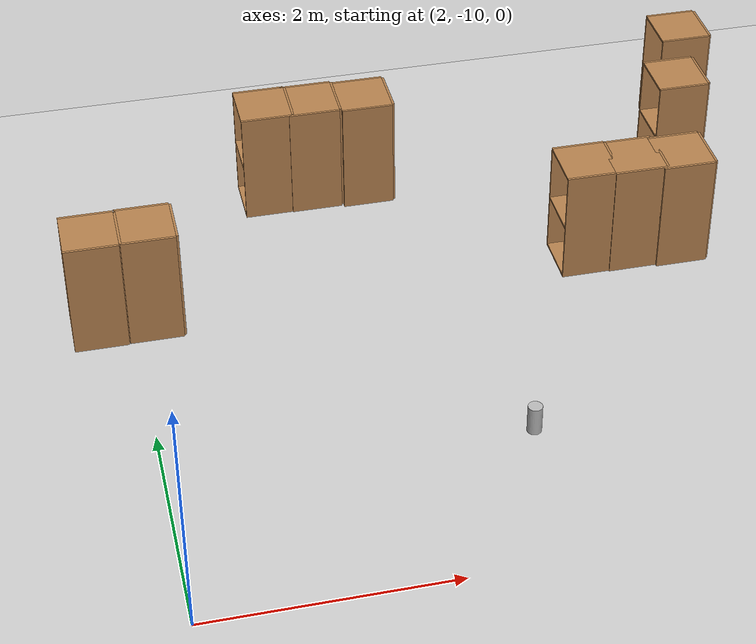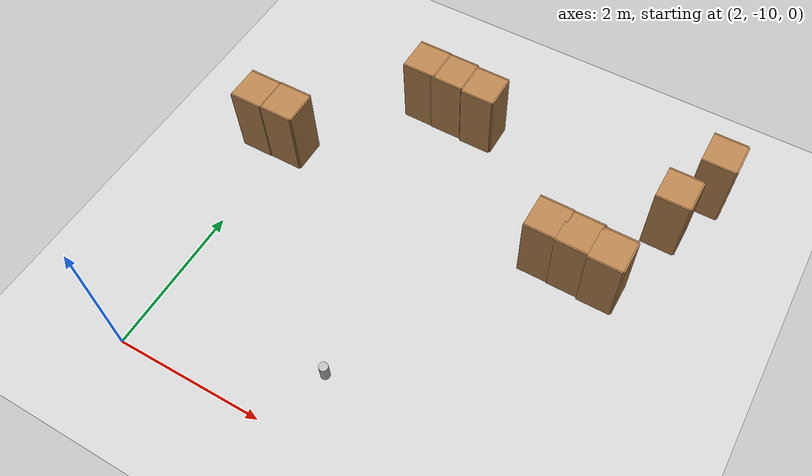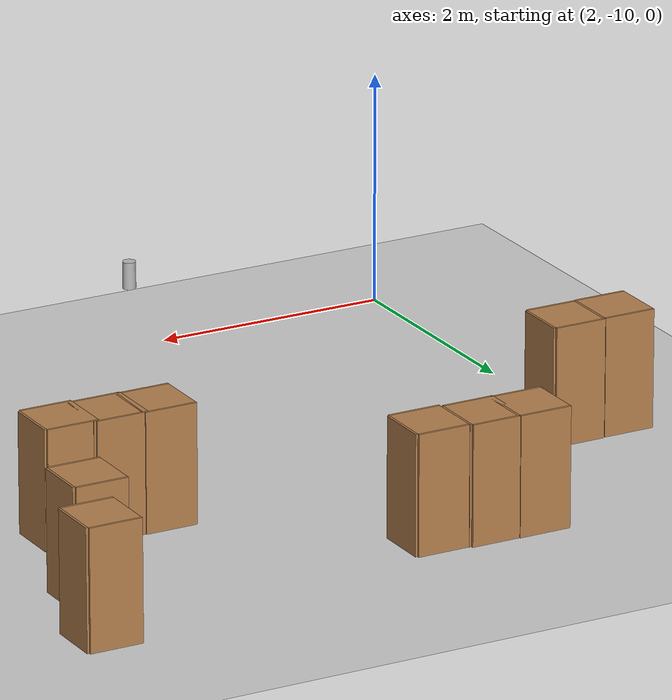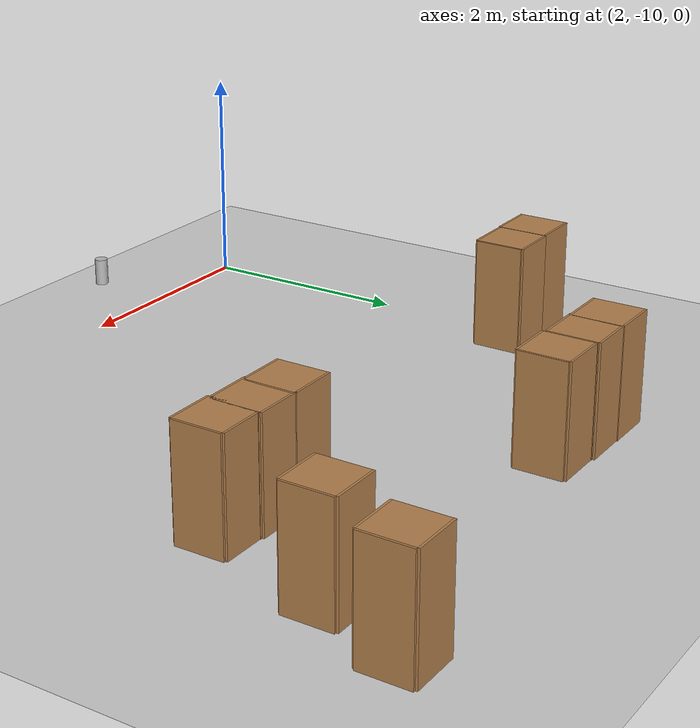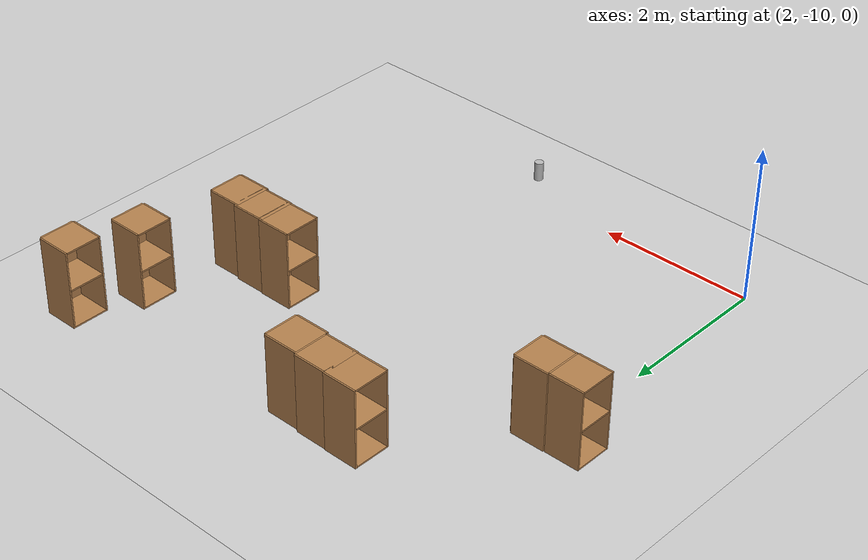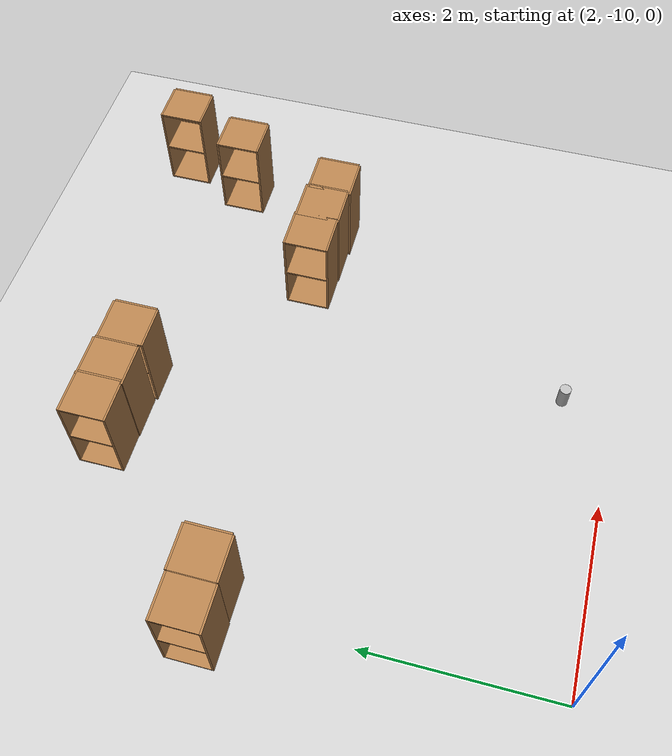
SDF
<sdf version="1.6">
 <world name="default">
  <model name="ground_plane">
   <static>1</static>
   <link name="link">
    <collision name="collision">
     <geometry><plane><normal>0 0 1</normal><size>100 100</size></plane></geometry>
     <surface>
      <contact><collide_bitmask>65535</collide_bitmask></contact>
      <friction><ode><mu>100</mu><mu2>50</mu2></ode></friction>
     </surface>
    </collision>
    <visual name="visual">
     <cast_shadows>0</cast_shadows>
     <geometry><plane><normal>0 0 1</normal><size>100 100</size></plane></geometry>
     <material>
      <script><uri>file://media/materials/scripts/gazebo.material</uri><name>Gazebo/Grey</name></script>
     </material>
    </visual>
   </link>
  </model>
  <model name="beer">
   <link name="link">
    <pose>0 0 0.115 0 -0 0</pose>
    <inertial>
     <mass>0.39</mass>
     <inertia><ixx>0.00058</ixx><ixy>0</ixy><ixz>0</ixz><iyy>0.00058</iyy><iyz>0</iyz><izz>0.00019</izz></inertia>
    </inertial>
    <collision name="collision">
     <geometry><cylinder><radius>0.055</radius><length>0.23</length></cylinder></geometry>
    </collision>
    <visual name="visual">
     <geometry><cylinder><radius>0.055</radius><length>0.23</length></cylinder></geometry>
     <material>
      <script>
       <uri>model://beer/materials/scripts</uri>
       <uri>model://beer/materials/textures</uri>
       <name>Beer/Diffuse</name>
      </script>
     </material>
    </visual>
   </link>
   <pose>4.63252 -9.39475 0.774993 1.1e-05 5e-05 -0.000105</pose>
  </model>
  <model name="cabinet_2">
   <static>1</static>
   <link name="cabinet_bottom_plate">
    <inertial>
     <pose>0 0 -1 0 -0 0</pose>
     <inertia><ixx>2.05</ixx><ixy>0</ixy><ixz>0</ixz><iyy>2.05</iyy><iyz>0</iyz><izz>2.05</izz></inertia>
     <mass>25</mass>
    </inertial>
    <collision name="cabinet_bottom_plate_geom">
     <pose>0 0 0.01 0 -0 0</pose>
     <geometry><box><size>0.45 0.45 0.02</size></box></geometry>
    </collision>
    <visual name="cabinet_bottom_plate_geom_visual">
     <pose>0 0 0.01 0 -0 0</pose>
     <geometry><box><size>0.45 0.45 0.02</size></box></geometry>
     <material>
      <script><uri>file://media/materials/scripts/gazebo.material</uri><name>Gazebo/Wood</name></script>
     </material>
    </visual>
    <collision name="cabinet_bottom_plate_geom_cabinet_back_plate">
     <pose>0.235 0 0.51 0 -0 0</pose>
     <geometry><box><size>0.02 0.45 1.02</size></box></geometry>
    </collision>
    <visual name="cabinet_bottom_plate_geom_cabinet_back_plate_visual">
     <pose>0.235 0 0.51 0 -0 0</pose>
     <geometry><box><size>0.02 0.45 1.02</size></box></geometry>
     <material>
      <script><uri>file://media/materials/scripts/gazebo.material</uri><name>Gazebo/Wood</name></script>
     </material>
    </visual>
    <collision name="cabinet_bottom_plate_geom_cabinet_left_plate">
     <pose>0 0.235 0.51 0 -0 0</pose>
     <geometry><box><size>0.45 0.02 1.02</size></box></geometry>
    </collision>
    <visual name="cabinet_bottom_plate_geom_cabinet_left_plate_visual">
     <pose>0 0.235 0.51 0 -0 0</pose>
     <geometry><box><size>0.45 0.02 1.02</size></box></geometry>
     <material>
      <script><uri>file://media/materials/scripts/gazebo.material</uri><name>Gazebo/Wood</name></script>
     </material>
    </visual>
    <collision name="cabinet_bottom_plate_geom_cabinet_middle_plate">
     <pose>0 0 0.51 0 -0 0</pose>
     <geometry><box><size>0.45 0.45 0.02</size></box></geometry>
    </collision>
    <visual name="cabinet_bottom_plate_geom_cabinet_middle_plate_visual">
     <pose>0 0 0.51 0 -0 0</pose>
     <geometry><box><size>0.45 0.45 0.02</size></box></geometry>
     <material>
      <script><uri>file://media/materials/scripts/gazebo.material</uri><name>Gazebo/Wood</name></script>
     </material>
    </visual>
    <collision name="cabinet_bottom_plate_geom_cabinet_right_plate">
     <pose>0 -0.235 0.51 0 -0 0</pose>
     <geometry><box><size>0.45 0.02 1.02</size></box></geometry>
    </collision>
    <visual name="cabinet_bottom_plate_geom_cabinet_right_plate_visual">
     <pose>0 -0.235 0.51 0 -0 0</pose>
     <geometry><box><size>0.45 0.02 1.02</size></box></geometry>
     <material>
      <script><uri>file://media/materials/scripts/gazebo.material</uri><name>Gazebo/Wood</name></script>
     </material>
    </visual>
    <collision name="cabinet_bottom_plate_geom_cabinet_top_plate">
     <pose>0 0 1.01 0 -0 0</pose>
     <geometry><box><size>0.45 0.45 0.02</size></box></geometry>
    </collision>
    <visual name="cabinet_bottom_plate_geom_cabinet_top_plate_visual">
     <pose>0 0 1.01 0 -0 0</pose>
     <geometry><box><size>0.45 0.45 0.02</size></box></geometry>
     <material>
      <script><uri>file://media/materials/scripts/gazebo.material</uri><name>Gazebo/Wood</name></script>
     </material>
    </visual>
   </link>
   <pose>6.7359 -6.53452 0 0 -0 0</pose>
  </model>
  <model name="cabinet_3">
   <static>1</static>
   <link name="cabinet_bottom_plate">
    <inertial>
     <pose>0 0 -1 0 -0 0</pose>
     <inertia><ixx>2.05</ixx><ixy>0</ixy><ixz>0</ixz><iyy>2.05</iyy><iyz>0</iyz><izz>2.05</izz></inertia>
     <mass>25</mass>
    </inertial>
    <collision name="cabinet_bottom_plate_geom">
     <pose>0 0 0.01 0 -0 0</pose>
     <geometry><box><size>0.45 0.45 0.02</size></box></geometry>
    </collision>
    <visual name="cabinet_bottom_plate_geom_visual">
     <pose>0 0 0.01 0 -0 0</pose>
     <geometry><box><size>0.45 0.45 0.02</size></box></geometry>
     <material>
      <script><uri>file://media/materials/scripts/gazebo.material</uri><name>Gazebo/Wood</name></script>
     </material>
    </visual>
    <collision name="cabinet_bottom_plate_geom_cabinet_back_plate">
     <pose>0.235 0 0.51 0 -0 0</pose>
     <geometry><box><size>0.02 0.45 1.02</size></box></geometry>
    </collision>
    <visual name="cabinet_bottom_plate_geom_cabinet_back_plate_visual">
     <pose>0.235 0 0.51 0 -0 0</pose>
     <geometry><box><size>0.02 0.45 1.02</size></box></geometry>
     <material>
      <script><uri>file://media/materials/scripts/gazebo.material</uri><name>Gazebo/Wood</name></script>
     </material>
    </visual>
    <collision name="cabinet_bottom_plate_geom_cabinet_left_plate">
     <pose>0 0.235 0.51 0 -0 0</pose>
     <geometry><box><size>0.45 0.02 1.02</size></box></geometry>
    </collision>
    <visual name="cabinet_bottom_plate_geom_cabinet_left_plate_visual">
     <pose>0 0.235 0.51 0 -0 0</pose>
     <geometry><box><size>0.45 0.02 1.02</size></box></geometry>
     <material>
      <script><uri>file://media/materials/scripts/gazebo.material</uri><name>Gazebo/Wood</name></script>
     </material>
    </visual>
    <collision name="cabinet_bottom_plate_geom_cabinet_middle_plate">
     <pose>0 0 0.51 0 -0 0</pose>
     <geometry><box><size>0.45 0.45 0.02</size></box></geometry>
    </collision>
    <visual name="cabinet_bottom_plate_geom_cabinet_middle_plate_visual">
     <pose>0 0 0.51 0 -0 0</pose>
     <geometry><box><size>0.45 0.45 0.02</size></box></geometry>
     <material>
      <script><uri>file://media/materials/scripts/gazebo.material</uri><name>Gazebo/Wood</name></script>
     </material>
    </visual>
    <collision name="cabinet_bottom_plate_geom_cabinet_right_plate">
     <pose>0 -0.235 0.51 0 -0 0</pose>
     <geometry><box><size>0.45 0.02 1.02</size></box></geometry>
    </collision>
    <visual name="cabinet_bottom_plate_geom_cabinet_right_plate_visual">
     <pose>0 -0.235 0.51 0 -0 0</pose>
     <geometry><box><size>0.45 0.02 1.02</size></box></geometry>
     <material>
      <script><uri>file://media/materials/scripts/gazebo.material</uri><name>Gazebo/Wood</name></script>
     </material>
    </visual>
    <collision name="cabinet_bottom_plate_geom_cabinet_top_plate">
     <pose>0 0 1.01 0 -0 0</pose>
     <geometry><box><size>0.45 0.45 0.02</size></box></geometry>
    </collision>
    <visual name="cabinet_bottom_plate_geom_cabinet_top_plate_visual">
     <pose>0 0 1.01 0 -0 0</pose>
     <geometry><box><size>0.45 0.45 0.02</size></box></geometry>
     <material>
      <script><uri>file://media/materials/scripts/gazebo.material</uri><name>Gazebo/Wood</name></script>
     </material>
    </visual>
   </link>
   <pose>6.31648 -6.511 0 0 -0 0</pose>
  </model>
  <model name="cabinet_4">
   <static>1</static>
   <link name="cabinet_bottom_plate">
    <inertial>
     <pose>0 0 -1 0 -0 0</pose>
     <inertia><ixx>2.05</ixx><ixy>0</ixy><ixz>0</ixz><iyy>2.05</iyy><iyz>0</iyz><izz>2.05</izz></inertia>
     <mass>25</mass>
    </inertial>
    <collision name="cabinet_bottom_plate_geom">
     <pose>0 0 0.01 0 -0 0</pose>
     <geometry><box><size>0.45 0.45 0.02</size></box></geometry>
    </collision>
    <visual name="cabinet_bottom_plate_geom_visual">
     <pose>0 0 0.01 0 -0 0</pose>
     <geometry><box><size>0.45 0.45 0.02</size></box></geometry>
     <material>
      <script><uri>file://media/materials/scripts/gazebo.material</uri><name>Gazebo/Wood</name></script>
     </material>
    </visual>
    <collision name="cabinet_bottom_plate_geom_cabinet_back_plate">
     <pose>0.235 0 0.51 0 -0 0</pose>
     <geometry><box><size>0.02 0.45 1.02</size></box></geometry>
    </collision>
    <visual name="cabinet_bottom_plate_geom_cabinet_back_plate_visual">
     <pose>0.235 0 0.51 0 -0 0</pose>
     <geometry><box><size>0.02 0.45 1.02</size></box></geometry>
     <material>
      <script><uri>file://media/materials/scripts/gazebo.material</uri><name>Gazebo/Wood</name></script>
     </material>
    </visual>
    <collision name="cabinet_bottom_plate_geom_cabinet_left_plate">
     <pose>0 0.235 0.51 0 -0 0</pose>
     <geometry><box><size>0.45 0.02 1.02</size></box></geometry>
    </collision>
    <visual name="cabinet_bottom_plate_geom_cabinet_left_plate_visual">
     <pose>0 0.235 0.51 0 -0 0</pose>
     <geometry><box><size>0.45 0.02 1.02</size></box></geometry>
     <material>
      <script><uri>file://media/materials/scripts/gazebo.material</uri><name>Gazebo/Wood</name></script>
     </material>
    </visual>
    <collision name="cabinet_bottom_plate_geom_cabinet_middle_plate">
     <pose>0 0 0.51 0 -0 0</pose>
     <geometry><box><size>0.45 0.45 0.02</size></box></geometry>
    </collision>
    <visual name="cabinet_bottom_plate_geom_cabinet_middle_plate_visual">
     <pose>0 0 0.51 0 -0 0</pose>
     <geometry><box><size>0.45 0.45 0.02</size></box></geometry>
     <material>
      <script><uri>file://media/materials/scripts/gazebo.material</uri><name>Gazebo/Wood</name></script>
     </material>
    </visual>
    <collision name="cabinet_bottom_plate_geom_cabinet_right_plate">
     <pose>0 -0.235 0.51 0 -0 0</pose>
     <geometry><box><size>0.45 0.02 1.02</size></box></geometry>
    </collision>
    <visual name="cabinet_bottom_plate_geom_cabinet_right_plate_visual">
     <pose>0 -0.235 0.51 0 -0 0</pose>
     <geometry><box><size>0.45 0.02 1.02</size></box></geometry>
     <material>
      <script><uri>file://media/materials/scripts/gazebo.material</uri><name>Gazebo/Wood</name></script>
     </material>
    </visual>
    <collision name="cabinet_bottom_plate_geom_cabinet_top_plate">
     <pose>0 0 1.01 0 -0 0</pose>
     <geometry><box><size>0.45 0.45 0.02</size></box></geometry>
    </collision>
    <visual name="cabinet_bottom_plate_geom_cabinet_top_plate_visual">
     <pose>0 0 1.01 0 -0 0</pose>
     <geometry><box><size>0.45 0.45 0.02</size></box></geometry>
     <material>
      <script><uri>file://media/materials/scripts/gazebo.material</uri><name>Gazebo/Wood</name></script>
     </material>
    </visual>
   </link>
   <pose>5.8994 -6.50101 0 0 -0 0</pose>
  </model>
  <model name="cabinet_5">
   <static>1</static>
   <link name="cabinet_bottom_plate">
    <inertial>
     <pose>0 0 -1 0 -0 0</pose>
     <inertia><ixx>2.05</ixx><ixy>0</ixy><ixz>0</ixz><iyy>2.05</iyy><iyz>0</iyz><izz>2.05</izz></inertia>
     <mass>25</mass>
    </inertial>
    <collision name="cabinet_bottom_plate_geom">
     <pose>0 0 0.01 0 -0 0</pose>
     <geometry><box><size>0.45 0.45 0.02</size></box></geometry>
    </collision>
    <visual name="cabinet_bottom_plate_geom_visual">
     <pose>0 0 0.01 0 -0 0</pose>
     <geometry><box><size>0.45 0.45 0.02</size></box></geometry>
     <material>
      <script><uri>file://media/materials/scripts/gazebo.material</uri><name>Gazebo/Wood</name></script>
     </material>
    </visual>
    <collision name="cabinet_bottom_plate_geom_cabinet_back_plate">
     <pose>0.235 0 0.51 0 -0 0</pose>
     <geometry><box><size>0.02 0.45 1.02</size></box></geometry>
    </collision>
    <visual name="cabinet_bottom_plate_geom_cabinet_back_plate_visual">
     <pose>0.235 0 0.51 0 -0 0</pose>
     <geometry><box><size>0.02 0.45 1.02</size></box></geometry>
     <material>
      <script><uri>file://media/materials/scripts/gazebo.material</uri><name>Gazebo/Wood</name></script>
     </material>
    </visual>
    <collision name="cabinet_bottom_plate_geom_cabinet_left_plate">
     <pose>0 0.235 0.51 0 -0 0</pose>
     <geometry><box><size>0.45 0.02 1.02</size></box></geometry>
    </collision>
    <visual name="cabinet_bottom_plate_geom_cabinet_left_plate_visual">
     <pose>0 0.235 0.51 0 -0 0</pose>
     <geometry><box><size>0.45 0.02 1.02</size></box></geometry>
     <material>
      <script><uri>file://media/materials/scripts/gazebo.material</uri><name>Gazebo/Wood</name></script>
     </material>
    </visual>
    <collision name="cabinet_bottom_plate_geom_cabinet_middle_plate">
     <pose>0 0 0.51 0 -0 0</pose>
     <geometry><box><size>0.45 0.45 0.02</size></box></geometry>
    </collision>
    <visual name="cabinet_bottom_plate_geom_cabinet_middle_plate_visual">
     <pose>0 0 0.51 0 -0 0</pose>
     <geometry><box><size>0.45 0.45 0.02</size></box></geometry>
     <material>
      <script><uri>file://media/materials/scripts/gazebo.material</uri><name>Gazebo/Wood</name></script>
     </material>
    </visual>
    <collision name="cabinet_bottom_plate_geom_cabinet_right_plate">
     <pose>0 -0.235 0.51 0 -0 0</pose>
     <geometry><box><size>0.45 0.02 1.02</size></box></geometry>
    </collision>
    <visual name="cabinet_bottom_plate_geom_cabinet_right_plate_visual">
     <pose>0 -0.235 0.51 0 -0 0</pose>
     <geometry><box><size>0.45 0.02 1.02</size></box></geometry>
     <material>
      <script><uri>file://media/materials/scripts/gazebo.material</uri><name>Gazebo/Wood</name></script>
     </material>
    </visual>
    <collision name="cabinet_bottom_plate_geom_cabinet_top_plate">
     <pose>0 0 1.01 0 -0 0</pose>
     <geometry><box><size>0.45 0.45 0.02</size></box></geometry>
    </collision>
    <visual name="cabinet_bottom_plate_geom_cabinet_top_plate_visual">
     <pose>0 0 1.01 0 -0 0</pose>
     <geometry><box><size>0.45 0.45 0.02</size></box></geometry>
     <material>
      <script><uri>file://media/materials/scripts/gazebo.material</uri><name>Gazebo/Wood</name></script>
     </material>
    </visual>
   </link>
   <pose>7.38638 -4.57138 0 0 -0 0</pose>
  </model>
  <model name="cabinet_6">
   <static>1</static>
   <link name="cabinet_bottom_plate">
    <inertial>
     <pose>0 0 -1 0 -0 0</pose>
     <inertia><ixx>2.05</ixx><ixy>0</ixy><ixz>0</ixz><iyy>2.05</iyy><iyz>0</iyz><izz>2.05</izz></inertia>
     <mass>25</mass>
    </inertial>
    <collision name="cabinet_bottom_plate_geom">
     <pose>0 0 0.01 0 -0 0</pose>
     <geometry><box><size>0.45 0.45 0.02</size></box></geometry>
    </collision>
    <visual name="cabinet_bottom_plate_geom_visual">
     <pose>0 0 0.01 0 -0 0</pose>
     <geometry><box><size>0.45 0.45 0.02</size></box></geometry>
     <material>
      <script><uri>file://media/materials/scripts/gazebo.material</uri><name>Gazebo/Wood</name></script>
     </material>
    </visual>
    <collision name="cabinet_bottom_plate_geom_cabinet_back_plate">
     <pose>0.235 0 0.51 0 -0 0</pose>
     <geometry><box><size>0.02 0.45 1.02</size></box></geometry>
    </collision>
    <visual name="cabinet_bottom_plate_geom_cabinet_back_plate_visual">
     <pose>0.235 0 0.51 0 -0 0</pose>
     <geometry><box><size>0.02 0.45 1.02</size></box></geometry>
     <material>
      <script><uri>file://media/materials/scripts/gazebo.material</uri><name>Gazebo/Wood</name></script>
     </material>
    </visual>
    <collision name="cabinet_bottom_plate_geom_cabinet_left_plate">
     <pose>0 0.235 0.51 0 -0 0</pose>
     <geometry><box><size>0.45 0.02 1.02</size></box></geometry>
    </collision>
    <visual name="cabinet_bottom_plate_geom_cabinet_left_plate_visual">
     <pose>0 0.235 0.51 0 -0 0</pose>
     <geometry><box><size>0.45 0.02 1.02</size></box></geometry>
     <material>
      <script><uri>file://media/materials/scripts/gazebo.material</uri><name>Gazebo/Wood</name></script>
     </material>
    </visual>
    <collision name="cabinet_bottom_plate_geom_cabinet_middle_plate">
     <pose>0 0 0.51 0 -0 0</pose>
     <geometry><box><size>0.45 0.45 0.02</size></box></geometry>
    </collision>
    <visual name="cabinet_bottom_plate_geom_cabinet_middle_plate_visual">
     <pose>0 0 0.51 0 -0 0</pose>
     <geometry><box><size>0.45 0.45 0.02</size></box></geometry>
     <material>
      <script><uri>file://media/materials/scripts/gazebo.material</uri><name>Gazebo/Wood</name></script>
     </material>
    </visual>
    <collision name="cabinet_bottom_plate_geom_cabinet_right_plate">
     <pose>0 -0.235 0.51 0 -0 0</pose>
     <geometry><box><size>0.45 0.02 1.02</size></box></geometry>
    </collision>
    <visual name="cabinet_bottom_plate_geom_cabinet_right_plate_visual">
     <pose>0 -0.235 0.51 0 -0 0</pose>
     <geometry><box><size>0.45 0.02 1.02</size></box></geometry>
     <material>
      <script><uri>file://media/materials/scripts/gazebo.material</uri><name>Gazebo/Wood</name></script>
     </material>
    </visual>
    <collision name="cabinet_bottom_plate_geom_cabinet_top_plate">
     <pose>0 0 1.01 0 -0 0</pose>
     <geometry><box><size>0.45 0.45 0.02</size></box></geometry>
    </collision>
    <visual name="cabinet_bottom_plate_geom_cabinet_top_plate_visual">
     <pose>0 0 1.01 0 -0 0</pose>
     <geometry><box><size>0.45 0.45 0.02</size></box></geometry>
     <material>
      <script><uri>file://media/materials/scripts/gazebo.material</uri><name>Gazebo/Wood</name></script>
     </material>
    </visual>
   </link>
   <pose>7.09521 -5.35379 0 0 -0 0</pose>
  </model>
  <model name="cabinet_11">
   <static>1</static>
   <link name="cabinet_bottom_plate">
    <inertial>
     <pose>0 0 -1 0 -0 0</pose>
     <inertia><ixx>2.05</ixx><ixy>0</ixy><ixz>0</ixz><iyy>2.05</iyy><iyz>0</iyz><izz>2.05</izz></inertia>
     <mass>25</mass>
    </inertial>
    <collision name="cabinet_bottom_plate_geom">
     <pose>0 0 0.01 0 -0 0</pose>
     <geometry><box><size>0.45 0.45 0.02</size></box></geometry>
    </collision>
    <visual name="cabinet_bottom_plate_geom_visual">
     <pose>0 0 0.01 0 -0 0</pose>
     <geometry><box><size>0.45 0.45 0.02</size></box></geometry>
     <material>
      <script><uri>file://media/materials/scripts/gazebo.material</uri><name>Gazebo/Wood</name></script>
     </material>
    </visual>
    <collision name="cabinet_bottom_plate_geom_cabinet_back_plate">
     <pose>0.235 0 0.51 0 -0 0</pose>
     <geometry><box><size>0.02 0.45 1.02</size></box></geometry>
    </collision>
    <visual name="cabinet_bottom_plate_geom_cabinet_back_plate_visual">
     <pose>0.235 0 0.51 0 -0 0</pose>
     <geometry><box><size>0.02 0.45 1.02</size></box></geometry>
     <material>
      <script><uri>file://media/materials/scripts/gazebo.material</uri><name>Gazebo/Wood</name></script>
     </material>
    </visual>
    <collision name="cabinet_bottom_plate_geom_cabinet_left_plate">
     <pose>0 0.235 0.51 0 -0 0</pose>
     <geometry><box><size>0.45 0.02 1.02</size></box></geometry>
    </collision>
    <visual name="cabinet_bottom_plate_geom_cabinet_left_plate_visual">
     <pose>0 0.235 0.51 0 -0 0</pose>
     <geometry><box><size>0.45 0.02 1.02</size></box></geometry>
     <material>
      <script><uri>file://media/materials/scripts/gazebo.material</uri><name>Gazebo/Wood</name></script>
     </material>
    </visual>
    <collision name="cabinet_bottom_plate_geom_cabinet_middle_plate">
     <pose>0 0 0.51 0 -0 0</pose>
     <geometry><box><size>0.45 0.45 0.02</size></box></geometry>
    </collision>
    <visual name="cabinet_bottom_plate_geom_cabinet_middle_plate_visual">
     <pose>0 0 0.51 0 -0 0</pose>
     <geometry><box><size>0.45 0.45 0.02</size></box></geometry>
     <material>
      <script><uri>file://media/materials/scripts/gazebo.material</uri><name>Gazebo/Wood</name></script>
     </material>
    </visual>
    <collision name="cabinet_bottom_plate_geom_cabinet_right_plate">
     <pose>0 -0.235 0.51 0 -0 0</pose>
     <geometry><box><size>0.45 0.02 1.02</size></box></geometry>
    </collision>
    <visual name="cabinet_bottom_plate_geom_cabinet_right_plate_visual">
     <pose>0 -0.235 0.51 0 -0 0</pose>
     <geometry><box><size>0.45 0.02 1.02</size></box></geometry>
     <material>
      <script><uri>file://media/materials/scripts/gazebo.material</uri><name>Gazebo/Wood</name></script>
     </material>
    </visual>
    <collision name="cabinet_bottom_plate_geom_cabinet_top_plate">
     <pose>0 0 1.01 0 -0 0</pose>
     <geometry><box><size>0.45 0.45 0.02</size></box></geometry>
    </collision>
    <visual name="cabinet_bottom_plate_geom_cabinet_top_plate_visual">
     <pose>0 0 1.01 0 -0 0</pose>
     <geometry><box><size>0.45 0.45 0.02</size></box></geometry>
     <material>
      <script><uri>file://media/materials/scripts/gazebo.material</uri><name>Gazebo/Wood</name></script>
     </material>
    </visual>
   </link>
   <pose>4.27721 -5.05984 0 0 -0 0</pose>
  </model>
  <model name="cabinet_12">
   <static>1</static>
   <link name="cabinet_bottom_plate">
    <inertial>
     <pose>0 0 -1 0 -0 0</pose>
     <inertia><ixx>2.05</ixx><ixy>0</ixy><ixz>0</ixz><iyy>2.05</iyy><iyz>0</iyz><izz>2.05</izz></inertia>
     <mass>25</mass>
    </inertial>
    <collision name="cabinet_bottom_plate_geom">
     <pose>0 0 0.01 0 -0 0</pose>
     <geometry><box><size>0.45 0.45 0.02</size></box></geometry>
    </collision>
    <visual name="cabinet_bottom_plate_geom_visual">
     <pose>0 0 0.01 0 -0 0</pose>
     <geometry><box><size>0.45 0.45 0.02</size></box></geometry>
     <material>
      <script><uri>file://media/materials/scripts/gazebo.material</uri><name>Gazebo/Wood</name></script>
     </material>
    </visual>
    <collision name="cabinet_bottom_plate_geom_cabinet_back_plate">
     <pose>0.235 0 0.51 0 -0 0</pose>
     <geometry><box><size>0.02 0.45 1.02</size></box></geometry>
    </collision>
    <visual name="cabinet_bottom_plate_geom_cabinet_back_plate_visual">
     <pose>0.235 0 0.51 0 -0 0</pose>
     <geometry><box><size>0.02 0.45 1.02</size></box></geometry>
     <material>
      <script><uri>file://media/materials/scripts/gazebo.material</uri><name>Gazebo/Wood</name></script>
     </material>
    </visual>
    <collision name="cabinet_bottom_plate_geom_cabinet_left_plate">
     <pose>0 0.235 0.51 0 -0 0</pose>
     <geometry><box><size>0.45 0.02 1.02</size></box></geometry>
    </collision>
    <visual name="cabinet_bottom_plate_geom_cabinet_left_plate_visual">
     <pose>0 0.235 0.51 0 -0 0</pose>
     <geometry><box><size>0.45 0.02 1.02</size></box></geometry>
     <material>
      <script><uri>file://media/materials/scripts/gazebo.material</uri><name>Gazebo/Wood</name></script>
     </material>
    </visual>
    <collision name="cabinet_bottom_plate_geom_cabinet_middle_plate">
     <pose>0 0 0.51 0 -0 0</pose>
     <geometry><box><size>0.45 0.45 0.02</size></box></geometry>
    </collision>
    <visual name="cabinet_bottom_plate_geom_cabinet_middle_plate_visual">
     <pose>0 0 0.51 0 -0 0</pose>
     <geometry><box><size>0.45 0.45 0.02</size></box></geometry>
     <material>
      <script><uri>file://media/materials/scripts/gazebo.material</uri><name>Gazebo/Wood</name></script>
     </material>
    </visual>
    <collision name="cabinet_bottom_plate_geom_cabinet_right_plate">
     <pose>0 -0.235 0.51 0 -0 0</pose>
     <geometry><box><size>0.45 0.02 1.02</size></box></geometry>
    </collision>
    <visual name="cabinet_bottom_plate_geom_cabinet_right_plate_visual">
     <pose>0 -0.235 0.51 0 -0 0</pose>
     <geometry><box><size>0.45 0.02 1.02</size></box></geometry>
     <material>
      <script><uri>file://media/materials/scripts/gazebo.material</uri><name>Gazebo/Wood</name></script>
     </material>
    </visual>
    <collision name="cabinet_bottom_plate_geom_cabinet_top_plate">
     <pose>0 0 1.01 0 -0 0</pose>
     <geometry><box><size>0.45 0.45 0.02</size></box></geometry>
    </collision>
    <visual name="cabinet_bottom_plate_geom_cabinet_top_plate_visual">
     <pose>0 0 1.01 0 -0 0</pose>
     <geometry><box><size>0.45 0.45 0.02</size></box></geometry>
     <material>
      <script><uri>file://media/materials/scripts/gazebo.material</uri><name>Gazebo/Wood</name></script>
     </material>
    </visual>
   </link>
   <pose>3.80947 -5.03505 0 0 -0 0</pose>
  </model>
  <model name="cabinet_13">
   <static>1</static>
   <link name="cabinet_bottom_plate">
    <inertial>
     <pose>0 0 -1 0 -0 0</pose>
     <inertia><ixx>2.05</ixx><ixy>0</ixy><ixz>0</ixz><iyy>2.05</iyy><iyz>0</iyz><izz>2.05</izz></inertia>
     <mass>25</mass>
    </inertial>
    <collision name="cabinet_bottom_plate_geom">
     <pose>0 0 0.01 0 -0 0</pose>
     <geometry><box><size>0.45 0.45 0.02</size></box></geometry>
    </collision>
    <visual name="cabinet_bottom_plate_geom_visual">
     <pose>0 0 0.01 0 -0 0</pose>
     <geometry><box><size>0.45 0.45 0.02</size></box></geometry>
     <material>
      <script><uri>file://media/materials/scripts/gazebo.material</uri><name>Gazebo/Wood</name></script>
     </material>
    </visual>
    <collision name="cabinet_bottom_plate_geom_cabinet_back_plate">
     <pose>0.235 0 0.51 0 -0 0</pose>
     <geometry><box><size>0.02 0.45 1.02</size></box></geometry>
    </collision>
    <visual name="cabinet_bottom_plate_geom_cabinet_back_plate_visual">
     <pose>0.235 0 0.51 0 -0 0</pose>
     <geometry><box><size>0.02 0.45 1.02</size></box></geometry>
     <material>
      <script><uri>file://media/materials/scripts/gazebo.material</uri><name>Gazebo/Wood</name></script>
     </material>
    </visual>
    <collision name="cabinet_bottom_plate_geom_cabinet_left_plate">
     <pose>0 0.235 0.51 0 -0 0</pose>
     <geometry><box><size>0.45 0.02 1.02</size></box></geometry>
    </collision>
    <visual name="cabinet_bottom_plate_geom_cabinet_left_plate_visual">
     <pose>0 0.235 0.51 0 -0 0</pose>
     <geometry><box><size>0.45 0.02 1.02</size></box></geometry>
     <material>
      <script><uri>file://media/materials/scripts/gazebo.material</uri><name>Gazebo/Wood</name></script>
     </material>
    </visual>
    <collision name="cabinet_bottom_plate_geom_cabinet_middle_plate">
     <pose>0 0 0.51 0 -0 0</pose>
     <geometry><box><size>0.45 0.45 0.02</size></box></geometry>
    </collision>
    <visual name="cabinet_bottom_plate_geom_cabinet_middle_plate_visual">
     <pose>0 0 0.51 0 -0 0</pose>
     <geometry><box><size>0.45 0.45 0.02</size></box></geometry>
     <material>
      <script><uri>file://media/materials/scripts/gazebo.material</uri><name>Gazebo/Wood</name></script>
     </material>
    </visual>
    <collision name="cabinet_bottom_plate_geom_cabinet_right_plate">
     <pose>0 -0.235 0.51 0 -0 0</pose>
     <geometry><box><size>0.45 0.02 1.02</size></box></geometry>
    </collision>
    <visual name="cabinet_bottom_plate_geom_cabinet_right_plate_visual">
     <pose>0 -0.235 0.51 0 -0 0</pose>
     <geometry><box><size>0.45 0.02 1.02</size></box></geometry>
     <material>
      <script><uri>file://media/materials/scripts/gazebo.material</uri><name>Gazebo/Wood</name></script>
     </material>
    </visual>
    <collision name="cabinet_bottom_plate_geom_cabinet_top_plate">
     <pose>0 0 1.01 0 -0 0</pose>
     <geometry><box><size>0.45 0.45 0.02</size></box></geometry>
    </collision>
    <visual name="cabinet_bottom_plate_geom_cabinet_top_plate_visual">
     <pose>0 0 1.01 0 -0 0</pose>
     <geometry><box><size>0.45 0.45 0.02</size></box></geometry>
     <material>
      <script><uri>file://media/materials/scripts/gazebo.material</uri><name>Gazebo/Wood</name></script>
     </material>
    </visual>
   </link>
   <pose>3.38855 -5.02721 0 0 -0 0</pose>
  </model>
  <model name="cabinet_14">
   <static>1</static>
   <link name="cabinet_bottom_plate">
    <inertial>
     <pose>0 0 -1 0 -0 0</pose>
     <inertia><ixx>2.05</ixx><ixy>0</ixy><ixz>0</ixz><iyy>2.05</iyy><iyz>0</iyz><izz>2.05</izz></inertia>
     <mass>25</mass>
    </inertial>
    <collision name="cabinet_bottom_plate_geom">
     <pose>0 0 0.01 0 -0 0</pose>
     <geometry><box><size>0.45 0.45 0.02</size></box></geometry>
    </collision>
    <visual name="cabinet_bottom_plate_geom_visual">
     <pose>0 0 0.01 0 -0 0</pose>
     <geometry><box><size>0.45 0.45 0.02</size></box></geometry>
     <material>
      <script><uri>file://media/materials/scripts/gazebo.material</uri><name>Gazebo/Wood</name></script>
     </material>
    </visual>
    <collision name="cabinet_bottom_plate_geom_cabinet_back_plate">
     <pose>0.235 0 0.51 0 -0 0</pose>
     <geometry><box><size>0.02 0.45 1.02</size></box></geometry>
    </collision>
    <visual name="cabinet_bottom_plate_geom_cabinet_back_plate_visual">
     <pose>0.235 0 0.51 0 -0 0</pose>
     <geometry><box><size>0.02 0.45 1.02</size></box></geometry>
     <material>
      <script><uri>file://media/materials/scripts/gazebo.material</uri><name>Gazebo/Wood</name></script>
     </material>
    </visual>
    <collision name="cabinet_bottom_plate_geom_cabinet_left_plate">
     <pose>0 0.235 0.51 0 -0 0</pose>
     <geometry><box><size>0.45 0.02 1.02</size></box></geometry>
    </collision>
    <visual name="cabinet_bottom_plate_geom_cabinet_left_plate_visual">
     <pose>0 0.235 0.51 0 -0 0</pose>
     <geometry><box><size>0.45 0.02 1.02</size></box></geometry>
     <material>
      <script><uri>file://media/materials/scripts/gazebo.material</uri><name>Gazebo/Wood</name></script>
     </material>
    </visual>
    <collision name="cabinet_bottom_plate_geom_cabinet_middle_plate">
     <pose>0 0 0.51 0 -0 0</pose>
     <geometry><box><size>0.45 0.45 0.02</size></box></geometry>
    </collision>
    <visual name="cabinet_bottom_plate_geom_cabinet_middle_plate_visual">
     <pose>0 0 0.51 0 -0 0</pose>
     <geometry><box><size>0.45 0.45 0.02</size></box></geometry>
     <material>
      <script><uri>file://media/materials/scripts/gazebo.material</uri><name>Gazebo/Wood</name></script>
     </material>
    </visual>
    <collision name="cabinet_bottom_plate_geom_cabinet_right_plate">
     <pose>0 -0.235 0.51 0 -0 0</pose>
     <geometry><box><size>0.45 0.02 1.02</size></box></geometry>
    </collision>
    <visual name="cabinet_bottom_plate_geom_cabinet_right_plate_visual">
     <pose>0 -0.235 0.51 0 -0 0</pose>
     <geometry><box><size>0.45 0.02 1.02</size></box></geometry>
     <material>
      <script><uri>file://media/materials/scripts/gazebo.material</uri><name>Gazebo/Wood</name></script>
     </material>
    </visual>
    <collision name="cabinet_bottom_plate_geom_cabinet_top_plate">
     <pose>0 0 1.01 0 -0 0</pose>
     <geometry><box><size>0.45 0.45 0.02</size></box></geometry>
    </collision>
    <visual name="cabinet_bottom_plate_geom_cabinet_top_plate_visual">
     <pose>0 0 1.01 0 -0 0</pose>
     <geometry><box><size>0.45 0.45 0.02</size></box></geometry>
     <material>
      <script><uri>file://media/materials/scripts/gazebo.material</uri><name>Gazebo/Wood</name></script>
     </material>
    </visual>
   </link>
   <pose>2.1661 -6.56555 0 0 -0 0</pose>
  </model>
  <model name="cabinet_15">
   <static>1</static>
   <link name="cabinet_bottom_plate">
    <inertial>
     <pose>0 0 -1 0 -0 0</pose>
     <inertia><ixx>2.05</ixx><ixy>0</ixy><ixz>0</ixz><iyy>2.05</iyy><iyz>0</iyz><izz>2.05</izz></inertia>
     <mass>25</mass>
    </inertial>
    <collision name="cabinet_bottom_plate_geom">
     <pose>0 0 0.01 0 -0 0</pose>
     <geometry><box><size>0.45 0.45 0.02</size></box></geometry>
    </collision>
    <visual name="cabinet_bottom_plate_geom_visual">
     <pose>0 0 0.01 0 -0 0</pose>
     <geometry><box><size>0.45 0.45 0.02</size></box></geometry>
     <material>
      <script><uri>file://media/materials/scripts/gazebo.material</uri><name>Gazebo/Wood</name></script>
     </material>
    </visual>
    <collision name="cabinet_bottom_plate_geom_cabinet_back_plate">
     <pose>0.235 0 0.51 0 -0 0</pose>
     <geometry><box><size>0.02 0.45 1.02</size></box></geometry>
    </collision>
    <visual name="cabinet_bottom_plate_geom_cabinet_back_plate_visual">
     <pose>0.235 0 0.51 0 -0 0</pose>
     <geometry><box><size>0.02 0.45 1.02</size></box></geometry>
     <material>
      <script><uri>file://media/materials/scripts/gazebo.material</uri><name>Gazebo/Wood</name></script>
     </material>
    </visual>
    <collision name="cabinet_bottom_plate_geom_cabinet_left_plate">
     <pose>0 0.235 0.51 0 -0 0</pose>
     <geometry><box><size>0.45 0.02 1.02</size></box></geometry>
    </collision>
    <visual name="cabinet_bottom_plate_geom_cabinet_left_plate_visual">
     <pose>0 0.235 0.51 0 -0 0</pose>
     <geometry><box><size>0.45 0.02 1.02</size></box></geometry>
     <material>
      <script><uri>file://media/materials/scripts/gazebo.material</uri><name>Gazebo/Wood</name></script>
     </material>
    </visual>
    <collision name="cabinet_bottom_plate_geom_cabinet_middle_plate">
     <pose>0 0 0.51 0 -0 0</pose>
     <geometry><box><size>0.45 0.45 0.02</size></box></geometry>
    </collision>
    <visual name="cabinet_bottom_plate_geom_cabinet_middle_plate_visual">
     <pose>0 0 0.51 0 -0 0</pose>
     <geometry><box><size>0.45 0.45 0.02</size></box></geometry>
     <material>
      <script><uri>file://media/materials/scripts/gazebo.material</uri><name>Gazebo/Wood</name></script>
     </material>
    </visual>
    <collision name="cabinet_bottom_plate_geom_cabinet_right_plate">
     <pose>0 -0.235 0.51 0 -0 0</pose>
     <geometry><box><size>0.45 0.02 1.02</size></box></geometry>
    </collision>
    <visual name="cabinet_bottom_plate_geom_cabinet_right_plate_visual">
     <pose>0 -0.235 0.51 0 -0 0</pose>
     <geometry><box><size>0.45 0.02 1.02</size></box></geometry>
     <material>
      <script><uri>file://media/materials/scripts/gazebo.material</uri><name>Gazebo/Wood</name></script>
     </material>
    </visual>
    <collision name="cabinet_bottom_plate_geom_cabinet_top_plate">
     <pose>0 0 1.01 0 -0 0</pose>
     <geometry><box><size>0.45 0.45 0.02</size></box></geometry>
    </collision>
    <visual name="cabinet_bottom_plate_geom_cabinet_top_plate_visual">
     <pose>0 0 1.01 0 -0 0</pose>
     <geometry><box><size>0.45 0.45 0.02</size></box></geometry>
     <material>
      <script><uri>file://media/materials/scripts/gazebo.material</uri><name>Gazebo/Wood</name></script>
     </material>
    </visual>
   </link>
   <pose>1.7079 -6.57352 0 0 -0 0</pose>
  </model>
 </world>
</sdf>
